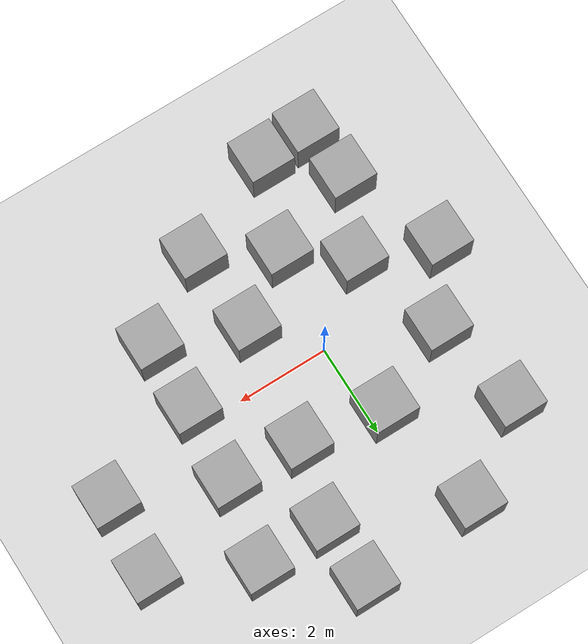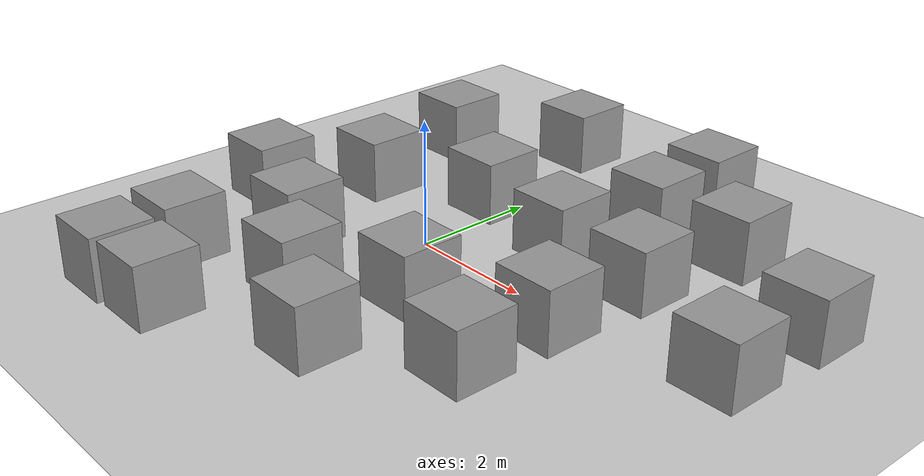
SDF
<sdf version="1.6">
 <world name="default">
  <light name="sun" type="directional">
   <pose>0 0 10 0 -0 0</pose>
   <diffuse>0.8 0.8 0.8 1</diffuse>
   <specular>0.2 0.2 0.2 1</specular>
   <attenuation>
    <range>1000</range>
    <constant>0.9</constant>
    <linear>0.01</linear>
    <quadratic>0.001</quadratic>
   </attenuation>
   <direction>-0.5 0.1 -0.9</direction>
  </light>
  <model name="ground_plane">
   <static>1</static>
   <link name="link">
    <collision name="collision">
     <geometry><plane><normal>0 0 1</normal><size>100 100</size></plane></geometry>
     <surface>
      <contact><collide_bitmask>65535</collide_bitmask></contact>
      <friction><ode><mu>100</mu><mu2>50</mu2></ode></friction>
     </surface>
    </collision>
    <visual name="visual">
     <cast_shadows>0</cast_shadows>
     <geometry><plane><normal>0 0 1</normal><size>100 100</size></plane></geometry>
     <material>
      <script><uri>file://media/materials/scripts/gazebo.material</uri><name>Gazebo/Grey</name></script>
     </material>
    </visual>
   </link>
  </model>
  <gravity>0 0 -9.8</gravity>
  <magnetic_field>6e-06 2.3e-05 -4.2e-05</magnetic_field>
  <atmosphere type="adiabatic"/>
  <physics name="default_physics" default="0" type="ode">
   <max_step_size>0.001</max_step_size>
   <real_time_factor>1</real_time_factor>
   <real_time_update_rate>1000</real_time_update_rate>
  </physics>
  <scene><ambient>0.4 0.4 0.4 1</ambient><background>0.7 0.7 0.7 1</background><shadows>1</shadows></scene>
  <audio><device>default</device></audio>
  <spherical_coordinates>
   <surface_model>EARTH_WGS84</surface_model>
   <latitude_deg>0</latitude_deg>
   <longitude_deg>0</longitude_deg>
   <elevation>0</elevation>
   <heading_deg>0</heading_deg>
  </spherical_coordinates>
  <model name="unit_box">
   <pose>-0.783069 4.19748 0.499995 0 1e-05 0</pose>
   <link name="link">
    <inertial>
     <mass>1</mass>
     <inertia>
      <ixx>0.166667</ixx>
      <ixy>0</ixy>
      <ixz>0</ixz>
      <iyy>0.166667</iyy>
      <iyz>0</iyz>
      <izz>0.166667</izz>
     </inertia>
    </inertial>
    <collision name="collision"><geometry><box><size>1 1 1</size></box></geometry></collision>
    <visual name="visual">
     <geometry><box><size>1 1 1</size></box></geometry>
     <material>
      <script><name>Gazebo/Grey</name><uri>file://media/materials/scripts/gazebo.material</uri></script>
     </material>
    </visual>
   </link>
  </model>
  <model name="unit_box_0">
   <pose>-2.55754 2.92534 0.499995 -1e-05 -0 -0</pose>
   <link name="link">
    <inertial>
     <mass>1</mass>
     <inertia>
      <ixx>0.166667</ixx>
      <ixy>0</ixy>
      <ixz>0</ixz>
      <iyy>0.166667</iyy>
      <iyz>0</iyz>
      <izz>0.166667</izz>
     </inertia>
    </inertial>
    <collision name="collision"><geometry><box><size>1 1 1</size></box></geometry></collision>
    <visual name="visual">
     <geometry><box><size>1 1 1</size></box></geometry>
     <material>
      <script><name>Gazebo/Grey</name><uri>file://media/materials/scripts/gazebo.material</uri></script>
     </material>
    </visual>
   </link>
  </model>
  <model name="unit_box_1">
   <pose>1.85276 4.42064 0.499995 0 1e-05 0</pose>
   <link name="link">
    <inertial>
     <mass>1</mass>
     <inertia>
      <ixx>0.166667</ixx>
      <ixy>0</ixy>
      <ixz>0</ixz>
      <iyy>0.166667</iyy>
      <iyz>0</iyz>
      <izz>0.166667</izz>
     </inertia>
    </inertial>
    <collision name="collision"><geometry><box><size>1 1 1</size></box></geometry></collision>
    <visual name="visual">
     <geometry><box><size>1 1 1</size></box></geometry>
     <material>
      <script><name>Gazebo/Grey</name><uri>file://media/materials/scripts/gazebo.material</uri></script>
     </material>
    </visual>
   </link>
  </model>
  <model name="unit_box_2">
   <pose>-2.17081 0.843632 0.499995 -1e-05 -0 -0</pose>
   <link name="link">
    <inertial>
     <mass>1</mass>
     <inertia>
      <ixx>0.166667</ixx>
      <ixy>0</ixy>
      <ixz>0</ixz>
      <iyy>0.166667</iyy>
      <iyz>0</iyz>
      <izz>0.166667</izz>
     </inertia>
    </inertial>
    <collision name="collision"><geometry><box><size>1 1 1</size></box></geometry></collision>
    <visual name="visual">
     <geometry><box><size>1 1 1</size></box></geometry>
     <material>
      <script><name>Gazebo/Grey</name><uri>file://media/materials/scripts/gazebo.material</uri></script>
     </material>
    </visual>
   </link>
  </model>
  <model name="unit_box_3">
   <pose>1.90468 3.02862 0.499995 0 1e-05 0</pose>
   <link name="link">
    <inertial>
     <mass>1</mass>
     <inertia>
      <ixx>0.166667</ixx>
      <ixy>0</ixy>
      <ixz>0</ixz>
      <iyy>0.166667</iyy>
      <iyz>0</iyz>
      <izz>0.166667</izz>
     </inertia>
    </inertial>
    <collision name="collision"><geometry><box><size>1 1 1</size></box></geometry></collision>
    <visual name="visual">
     <geometry><box><size>1 1 1</size></box></geometry>
     <material>
      <script><name>Gazebo/Grey</name><uri>file://media/materials/scripts/gazebo.material</uri></script>
     </material>
    </visual>
   </link>
  </model>
  <model name="unit_box_4">
   <pose>2.92505 -1.89758 0.499995 -1e-05 -0 -0</pose>
   <link name="link">
    <inertial>
     <mass>1</mass>
     <inertia>
      <ixx>0.166667</ixx>
      <ixy>0</ixy>
      <ixz>0</ixz>
      <iyy>0.166667</iyy>
      <iyz>0</iyz>
      <izz>0.166667</izz>
     </inertia>
    </inertial>
    <collision name="collision"><geometry><box><size>1 1 1</size></box></geometry></collision>
    <visual name="visual">
     <geometry><box><size>1 1 1</size></box></geometry>
     <material>
      <script><name>Gazebo/Grey</name><uri>file://media/materials/scripts/gazebo.material</uri></script>
     </material>
    </visual>
   </link>
  </model>
  <model name="unit_box_5">
   <pose>1.21498 -3.02858 0.499995 0 1e-05 0</pose>
   <link name="link">
    <inertial>
     <mass>1</mass>
     <inertia>
      <ixx>0.166667</ixx>
      <ixy>0</ixy>
      <ixz>0</ixz>
      <iyy>0.166667</iyy>
      <iyz>0</iyz>
      <izz>0.166667</izz>
     </inertia>
    </inertial>
    <collision name="collision"><geometry><box><size>1 1 1</size></box></geometry></collision>
    <visual name="visual">
     <geometry><box><size>1 1 1</size></box></geometry>
     <material>
      <script><name>Gazebo/Grey</name><uri>file://media/materials/scripts/gazebo.material</uri></script>
     </material>
    </visual>
   </link>
  </model>
  <model name="unit_box_6">
   <pose>3.08923 1.29062 0.499995 -1e-05 -0 -0</pose>
   <link name="link">
    <inertial>
     <mass>1</mass>
     <inertia>
      <ixx>0.166667</ixx>
      <ixy>0</ixy>
      <ixz>0</ixz>
      <iyy>0.166667</iyy>
      <iyz>0</iyz>
      <izz>0.166667</izz>
     </inertia>
    </inertial>
    <collision name="collision"><geometry><box><size>1 1 1</size></box></geometry></collision>
    <visual name="visual">
     <geometry><box><size>1 1 1</size></box></geometry>
     <material>
      <script><name>Gazebo/Grey</name><uri>file://media/materials/scripts/gazebo.material</uri></script>
     </material>
    </visual>
   </link>
  </model>
  <model name="unit_box_7">
   <pose>3.43393 3.06618 0.499995 0 1e-05 0</pose>
   <link name="link">
    <inertial>
     <mass>1</mass>
     <inertia>
      <ixx>0.166667</ixx>
      <ixy>0</ixy>
      <ixz>0</ixz>
      <iyy>0.166667</iyy>
      <iyz>0</iyz>
      <izz>0.166667</izz>
     </inertia>
    </inertial>
    <collision name="collision"><geometry><box><size>1 1 1</size></box></geometry></collision>
    <visual name="visual">
     <geometry><box><size>1 1 1</size></box></geometry>
     <material>
      <script><name>Gazebo/Grey</name><uri>file://media/materials/scripts/gazebo.material</uri></script>
     </material>
    </visual>
   </link>
  </model>
  <model name="unit_box_8">
   <pose>5.39042 2.04472 0.499995 -1e-05 -0 -0</pose>
   <link name="link">
    <inertial>
     <mass>1</mass>
     <inertia>
      <ixx>0.166667</ixx>
      <ixy>0</ixy>
      <ixz>0</ixz>
      <iyy>0.166667</iyy>
      <iyz>0</iyz>
      <izz>0.166667</izz>
     </inertia>
    </inertial>
    <collision name="collision"><geometry><box><size>1 1 1</size></box></geometry></collision>
    <visual name="visual">
     <geometry><box><size>1 1 1</size></box></geometry>
     <material>
      <script><name>Gazebo/Grey</name><uri>file://media/materials/scripts/gazebo.material</uri></script>
     </material>
    </visual>
   </link>
  </model>
  <model name="unit_box_9">
   <pose>5.29277 0.379472 0.499995 0 1e-05 0</pose>
   <link name="link">
    <inertial>
     <mass>1</mass>
     <inertia>
      <ixx>0.166667</ixx>
      <ixy>0</ixy>
      <ixz>0</ixz>
      <iyy>0.166667</iyy>
      <iyz>0</iyz>
      <izz>0.166667</izz>
     </inertia>
    </inertial>
    <collision name="collision"><geometry><box><size>1 1 1</size></box></geometry></collision>
    <visual name="visual">
     <geometry><box><size>1 1 1</size></box></geometry>
     <material>
      <script><name>Gazebo/Grey</name><uri>file://media/materials/scripts/gazebo.material</uri></script>
     </material>
    </visual>
   </link>
  </model>
  <model name="unit_box_10">
   <pose>-1.51242 -1.26042 0.499995 -1e-05 -0 -0</pose>
   <link name="link">
    <inertial>
     <mass>1</mass>
     <inertia>
      <ixx>0.166667</ixx>
      <ixy>0</ixy>
      <ixz>0</ixz>
      <iyy>0.166667</iyy>
      <iyz>0</iyz>
      <izz>0.166667</izz>
     </inertia>
    </inertial>
    <collision name="collision"><geometry><box><size>1 1 1</size></box></geometry></collision>
    <visual name="visual">
     <geometry><box><size>1 1 1</size></box></geometry>
     <material>
      <script><name>Gazebo/Grey</name><uri>file://media/materials/scripts/gazebo.material</uri></script>
     </material>
    </visual>
   </link>
  </model>
  <model name="unit_box_11">
   <pose>-3.14112 -0.633727 0.499995 0 1e-05 0</pose>
   <link name="link">
    <inertial>
     <mass>1</mass>
     <inertia>
      <ixx>0.166667</ixx>
      <ixy>0</ixy>
      <ixz>0</ixz>
      <iyy>0.166667</iyy>
      <iyz>0</iyz>
      <izz>0.166667</izz>
     </inertia>
    </inertial>
    <collision name="collision"><geometry><box><size>1 1 1</size></box></geometry></collision>
    <visual name="visual">
     <geometry><box><size>1 1 1</size></box></geometry>
     <material>
      <script><name>Gazebo/Grey</name><uri>file://media/materials/scripts/gazebo.material</uri></script>
     </material>
    </visual>
   </link>
  </model>
  <model name="unit_box_12">
   <pose>1.08043 -1.19277 0.499995 -1e-05 -0 -0</pose>
   <link name="link">
    <inertial>
     <mass>1</mass>
     <inertia>
      <ixx>0.166667</ixx>
      <ixy>0</ixy>
      <ixz>0</ixz>
      <iyy>0.166667</iyy>
      <iyz>0</iyz>
      <izz>0.166667</izz>
     </inertia>
    </inertial>
    <collision name="collision"><geometry><box><size>1 1 1</size></box></geometry></collision>
    <visual name="visual">
     <geometry><box><size>1 1 1</size></box></geometry>
     <material>
      <script><name>Gazebo/Grey</name><uri>file://media/materials/scripts/gazebo.material</uri></script>
     </material>
    </visual>
   </link>
  </model>
  <model name="unit_box_13">
   <pose>-0.352179 1.68676 0.499995 0 1e-05 0</pose>
   <link name="link">
    <inertial>
     <mass>1</mass>
     <inertia>
      <ixx>0.166667</ixx>
      <ixy>0</ixy>
      <ixz>0</ixz>
      <iyy>0.166667</iyy>
      <iyz>0</iyz>
      <izz>0.166667</izz>
     </inertia>
    </inertial>
    <collision name="collision"><geometry><box><size>1 1 1</size></box></geometry></collision>
    <visual name="visual">
     <geometry><box><size>1 1 1</size></box></geometry>
     <material>
      <script><name>Gazebo/Grey</name><uri>file://media/materials/scripts/gazebo.material</uri></script>
     </material>
    </visual>
   </link>
  </model>
  <model name="unit_box_14">
   <pose>-0.306187 -2.18278 0.499995 -1e-05 -0 -0</pose>
   <link name="link">
    <inertial>
     <mass>1</mass>
     <inertia>
      <ixx>0.166667</ixx>
      <ixy>0</ixy>
      <ixz>0</ixz>
      <iyy>0.166667</iyy>
      <iyz>0</iyz>
      <izz>0.166667</izz>
     </inertia>
    </inertial>
    <collision name="collision"><geometry><box><size>1 1 1</size></box></geometry></collision>
    <visual name="visual">
     <geometry><box><size>1 1 1</size></box></geometry>
     <material>
      <script><name>Gazebo/Grey</name><uri>file://media/materials/scripts/gazebo.material</uri></script>
     </material>
    </visual>
   </link>
  </model>
  <model name="unit_box_15">
   <pose>-2.24691 -2.85753 0.499995 0 1e-05 0</pose>
   <link name="link">
    <inertial>
     <mass>1</mass>
     <inertia>
      <ixx>0.166667</ixx>
      <ixy>0</ixy>
      <ixz>0</ixz>
      <iyy>0.166667</iyy>
      <iyz>0</iyz>
      <izz>0.166667</izz>
     </inertia>
    </inertial>
    <collision name="collision"><geometry><box><size>1 1 1</size></box></geometry></collision>
    <visual name="visual">
     <geometry><box><size>1 1 1</size></box></geometry>
     <material>
      <script><name>Gazebo/Grey</name><uri>file://media/materials/scripts/gazebo.material</uri></script>
     </material>
    </visual>
   </link>
  </model>
  <model name="unit_box_16">
   <pose>-1.01044 -4.02808 0.499995 -1e-05 -0 -0</pose>
   <link name="link">
    <inertial>
     <mass>1</mass>
     <inertia>
      <ixx>0.166667</ixx>
      <ixy>0</ixy>
      <ixz>0</ixz>
      <iyy>0.166667</iyy>
      <iyz>0</iyz>
      <izz>0.166667</izz>
     </inertia>
    </inertial>
    <collision name="collision"><geometry><box><size>1 1 1</size></box></geometry></collision>
    <visual name="visual">
     <geometry><box><size>1 1 1</size></box></geometry>
     <material>
      <script><name>Gazebo/Grey</name><uri>file://media/materials/scripts/gazebo.material</uri></script>
     </material>
    </visual>
   </link>
  </model>
  <model name="unit_box_17">
   <pose>-2.12068 -4.08865 0.499995 0 1e-05 0</pose>
   <link name="link">
    <inertial>
     <mass>1</mass>
     <inertia>
      <ixx>0.166667</ixx>
      <ixy>0</ixy>
      <ixz>0</ixz>
      <iyy>0.166667</iyy>
      <iyz>0</iyz>
      <izz>0.166667</izz>
     </inertia>
    </inertial>
    <collision name="collision"><geometry><box><size>1 1 1</size></box></geometry></collision>
    <visual name="visual">
     <geometry><box><size>1 1 1</size></box></geometry>
     <material>
      <script><name>Gazebo/Grey</name><uri>file://media/materials/scripts/gazebo.material</uri></script>
     </material>
    </visual>
   </link>
  </model>
  <model name="unit_box_18">
   <pose>2.96268 -0.376863 0.499995 -1e-05 -0 0</pose>
   <link name="link">
    <inertial>
     <mass>1</mass>
     <inertia>
      <ixx>0.166667</ixx>
      <ixy>0</ixy>
      <ixz>0</ixz>
      <iyy>0.166667</iyy>
      <iyz>0</iyz>
      <izz>0.166667</izz>
     </inertia>
    </inertial>
    <collision name="collision"><geometry><box><size>1 1 1</size></box></geometry></collision>
    <visual name="visual">
     <geometry><box><size>1 1 1</size></box></geometry>
     <material>
      <script><name>Gazebo/Grey</name><uri>file://media/materials/scripts/gazebo.material</uri></script>
     </material>
    </visual>
   </link>
  </model>
  <model name="unit_box_19">
   <pose>1.46487 1.39061 0.5 0 -0 0</pose>
   <link name="link">
    <inertial>
     <mass>1</mass>
     <inertia>
      <ixx>0.166667</ixx>
      <ixy>0</ixy>
      <ixz>0</ixz>
      <iyy>0.166667</iyy>
      <iyz>0</iyz>
      <izz>0.166667</izz>
     </inertia>
    </inertial>
    <collision name="collision"><geometry><box><size>1 1 1</size></box></geometry></collision>
    <visual name="visual">
     <geometry><box><size>1 1 1</size></box></geometry>
     <material>
      <script><name>Gazebo/Grey</name><uri>file://media/materials/scripts/gazebo.material</uri></script>
     </material>
    </visual>
   </link>
  </model>
 </world>
</sdf>
